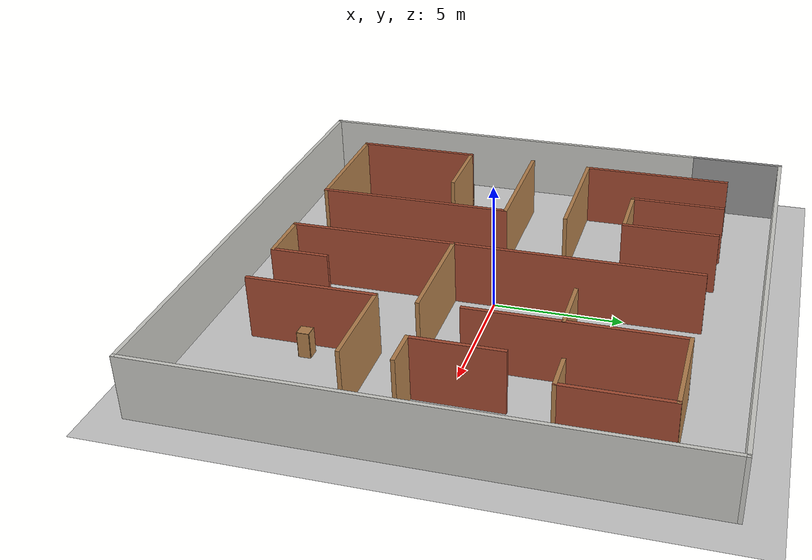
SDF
<sdf version="1.6">
 <world name="default">
  <light name="sun" type="directional">
   <pose>0 0 10 0 -0 0</pose>
   <diffuse>0.8 0.8 0.8 1</diffuse>
   <specular>0.2 0.2 0.2 1</specular>
   <attenuation>
    <range>1000</range>
    <constant>0.9</constant>
    <linear>0.01</linear>
    <quadratic>0.001</quadratic>
   </attenuation>
   <direction>-0.5 0.1 -0.9</direction>
  </light>
  <model name="ground_plane">
   <static>1</static>
   <link name="link">
    <collision name="collision">
     <geometry><plane><normal>0 0 1</normal><size>100 100</size></plane></geometry>
     <surface><friction><ode><mu>100</mu><mu2>50</mu2></ode></friction></surface>
    </collision>
    <visual name="visual">
     <cast_shadows>0</cast_shadows>
     <geometry><plane><normal>0 0 1</normal><size>100 100</size></plane></geometry>
     <material>
      <script><uri>file://media/materials/scripts/gazebo.material</uri><name>Gazebo/Grey</name></script>
     </material>
    </visual>
   </link>
  </model>
  <gravity>0 0 -9.8</gravity>
  <magnetic_field>6e-06 2.3e-05 -4.2e-05</magnetic_field>
  <atmosphere type="adiabatic"/>
  <physics name="default_physics" default="0" type="ode">
   <max_step_size>0.001</max_step_size>
   <real_time_factor>1</real_time_factor>
   <real_time_update_rate>1000</real_time_update_rate>
  </physics>
  <scene><ambient>0.4 0.4 0.4 1</ambient><background>0.7 0.7 0.7 1</background><shadows>1</shadows></scene>
  <audio><device>default</device></audio>
  <spherical_coordinates>
   <surface_model>EARTH_WGS84</surface_model>
   <latitude_deg>0</latitude_deg>
   <longitude_deg>0</longitude_deg>
   <elevation>0</elevation>
   <heading_deg>0</heading_deg>
  </spherical_coordinates>
  <model name="location_test">
   <pose>-0.102355 0.000345 0 0 -0 0</pose>
   <link name="Wall_10">
    <collision name="Wall_10_Collision">
     <geometry><box><size>6 0.15 2.5</size></box></geometry>
     <pose>0 0 1.25 0 -0 0</pose>
    </collision>
    <visual name="Wall_10_Visual">
     <pose>0 0 1.25 0 -0 0</pose>
     <geometry><box><size>6 0.15 2.5</size></box></geometry>
     <material>
      <script><uri>file://media/materials/scripts/gazebo.material</uri><name>Gazebo/Bricks</name></script>
      <ambient>1 1 1 1</ambient>
     </material>
     <meta><layer>0</layer></meta>
    </visual>
    <pose>-7.82094 5.02687 0 0 -0 -1.5708</pose>
   </link>
   <link name="Wall_11">
    <collision name="Wall_11_Collision">
     <geometry><box><size>5 0.15 2.5</size></box></geometry>
     <pose>0 0 1.25 0 -0 0</pose>
    </collision>
    <visual name="Wall_11_Visual">
     <pose>0 0 1.25 0 -0 0</pose>
     <geometry><box><size>5 0.15 2.5</size></box></geometry>
     <material>
      <script><uri>file://media/materials/scripts/gazebo.material</uri><name>Gazebo/Wood</name></script>
      <ambient>1 1 1 1</ambient>
     </material>
     <meta><layer>0</layer></meta>
    </visual>
    <pose>-5.39594 2.10187 0 0 -0 0</pose>
   </link>
   <link name="Wall_13">
    <collision name="Wall_13_Collision">
     <geometry><box><size>5 0.15 2.5</size></box></geometry>
     <pose>0 0 1.25 0 -0 0</pose>
    </collision>
    <visual name="Wall_13_Visual">
     <pose>0 0 1.25 0 -0 0</pose>
     <geometry><box><size>5 0.15 2.5</size></box></geometry>
     <material>
      <script><uri>file://media/materials/scripts/gazebo.material</uri><name>Gazebo/Wood</name></script>
      <ambient>1 1 1 1</ambient>
     </material>
     <meta><layer>0</layer></meta>
    </visual>
    <pose>-5.45712 -0.33808 0 0 -0 0</pose>
   </link>
   <link name="Wall_14">
    <collision name="Wall_14_Collision">
     <geometry><box><size>7.75 0.15 2.5</size></box></geometry>
     <pose>0 0 1.25 0 -0 0</pose>
    </collision>
    <visual name="Wall_14_Visual">
     <pose>0 0 1.25 0 -0 0</pose>
     <geometry><box><size>7.75 0.15 2.5</size></box></geometry>
     <material>
      <script><uri>file://media/materials/scripts/gazebo.material</uri><name>Gazebo/Bricks</name></script>
      <ambient>1 1 1 1</ambient>
     </material>
     <meta><layer>0</layer></meta>
    </visual>
    <pose>-3.03212 -4.13808 0 0 -0 -1.5708</pose>
   </link>
   <link name="Wall_15">
    <collision name="Wall_15_Collision">
     <geometry><box><size>5 0.15 2.5</size></box></geometry>
     <pose>0 0 1.25 0 -0 0</pose>
    </collision>
    <visual name="Wall_15_Visual">
     <pose>0 0 1.25 0 -0 0</pose>
     <geometry><box><size>5 0.15 2.5</size></box></geometry>
     <material>
      <script><uri>file://media/materials/scripts/gazebo.material</uri><name>Gazebo/Wood</name></script>
      <ambient>1 1 1 1</ambient>
     </material>
     <meta><layer>0</layer></meta>
    </visual>
    <pose>-5.45712 -7.93808 0 0 -0 3.14159</pose>
   </link>
   <link name="Wall_16">
    <collision name="Wall_16_Collision">
     <geometry><box><size>5 0.15 2.5</size></box></geometry>
     <pose>0 0 1.25 0 -0 0</pose>
    </collision>
    <visual name="Wall_16_Visual">
     <pose>0 0 1.25 0 -0 0</pose>
     <geometry><box><size>5 0.15 2.5</size></box></geometry>
     <material>
      <script><uri>file://media/materials/scripts/gazebo.material</uri><name>Gazebo/Bricks</name></script>
      <ambient>1 1 1 1</ambient>
     </material>
     <meta><layer>0</layer></meta>
    </visual>
    <pose>-7.88212 -5.51308 0 0 -0 1.5708</pose>
   </link>
   <link name="Wall_17">
    <collision name="Wall_17_Collision">
     <geometry><box><size>3 0.15 2.5</size></box></geometry>
     <pose>0 0 1.25 0 -0 0</pose>
    </collision>
    <visual name="Wall_17_Visual">
     <pose>0 0 1.25 0 -0 0</pose>
     <geometry><box><size>3 0.15 2.5</size></box></geometry>
     <material>
      <script><uri>file://media/materials/scripts/gazebo.material</uri><name>Gazebo/Wood</name></script>
      <ambient>1 1 1 1</ambient>
     </material>
     <meta><layer>0</layer></meta>
    </visual>
    <pose>-6.45712 -3.08808 0 0 -0 0</pose>
   </link>
   <link name="Wall_19">
    <collision name="Wall_19_Collision">
     <geometry><box><size>16 0.15 2.5</size></box></geometry>
     <pose>0 0 1.25 0 -0 0</pose>
    </collision>
    <visual name="Wall_19_Visual">
     <pose>0 0 1.25 0 -0 0</pose>
     <geometry><box><size>16 0.15 2.5</size></box></geometry>
     <material>
      <script><uri>file://media/materials/scripts/gazebo.material</uri><name>Gazebo/Bricks</name></script>
      <ambient>1 1 1 1</ambient>
     </material>
     <meta><layer>0</layer></meta>
    </visual>
    <pose>0.101926 -0.064899 0 0 -0 -1.5708</pose>
   </link>
   <link name="Wall_20">
    <collision name="Wall_20_Collision">
     <geometry><box><size>2.25 0.15 2.5</size></box></geometry>
     <pose>0 0 1.25 0 -0 0</pose>
    </collision>
    <visual name="Wall_20_Visual">
     <pose>0 0 1.25 0 -0 0</pose>
     <geometry><box><size>2.25 0.15 2.5</size></box></geometry>
     <material>
      <script><uri>file://media/materials/scripts/gazebo.material</uri><name>Gazebo/Wood</name></script>
      <ambient>1 1 1 1</ambient>
     </material>
     <meta><layer>0</layer></meta>
    </visual>
    <pose>1.15193 -7.9899 0 0 -0 0</pose>
   </link>
   <link name="Wall_21">
    <collision name="Wall_21_Collision">
     <geometry><box><size>2.25 0.15 2.5</size></box></geometry>
     <pose>0 0 1.25 0 -0 0</pose>
    </collision>
    <visual name="Wall_21_Visual">
     <pose>0 0 1.25 0 -0 0</pose>
     <geometry><box><size>2.25 0.15 2.5</size></box></geometry>
     <material>
      <script><uri>file://media/materials/scripts/gazebo.material</uri><name>Gazebo/Bricks</name></script>
      <ambient>1 1 1 1</ambient>
     </material>
     <meta><layer>0</layer></meta>
    </visual>
    <pose>2.20193 -6.9399 0 0 -0 1.5708</pose>
   </link>
   <link name="Wall_26">
    <collision name="Wall_26_Collision">
     <geometry><box><size>5 0.15 2.5</size></box></geometry>
     <pose>0 0 1.25 0 -0 0</pose>
    </collision>
    <visual name="Wall_26_Visual">
     <pose>0 0 1.25 0 -0 0</pose>
     <geometry><box><size>5 0.15 2.5</size></box></geometry>
     <material>
      <script><uri>file://media/materials/scripts/gazebo.material</uri><name>Gazebo/Bricks</name></script>
      <ambient>1 1 1 1</ambient>
     </material>
     <meta><layer>0</layer></meta>
    </visual>
    <pose>4.36504 -5.59745 0 0 -0 1.5708</pose>
   </link>
   <link name="Wall_27">
    <collision name="Wall_27_Collision">
     <geometry><box><size>3.75 0.15 2.5</size></box></geometry>
     <pose>0 0 1.25 0 -0 0</pose>
    </collision>
    <visual name="Wall_27_Visual">
     <pose>0 0 1.25 0 -0 0</pose>
     <geometry><box><size>3.75 0.15 2.5</size></box></geometry>
     <material>
      <script><uri>file://media/materials/scripts/gazebo.material</uri><name>Gazebo/Wood</name></script>
      <ambient>1 1 1 1</ambient>
     </material>
     <meta><layer>0</layer></meta>
    </visual>
    <pose>6.16504 -3.17245 0 0 -0 0</pose>
   </link>
   <link name="Wall_29">
    <collision name="Wall_29_Collision">
     <geometry><box><size>8 0.15 2.5</size></box></geometry>
     <pose>0 0 1.25 0 -0 0</pose>
    </collision>
    <visual name="Wall_29_Visual">
     <pose>0 0 1.25 0 -0 0</pose>
     <geometry><box><size>8 0.15 2.5</size></box></geometry>
     <material>
      <script><uri>file://media/materials/scripts/gazebo.material</uri><name>Gazebo/Bricks</name></script>
      <ambient>1 1 1 1</ambient>
     </material>
     <meta><layer>0</layer></meta>
    </visual>
    <pose>4.41757 3.9192 0 0 -0 1.5708</pose>
   </link>
   <link name="Wall_30">
    <collision name="Wall_30_Collision">
     <geometry><box><size>3.75 0.15 2.5</size></box></geometry>
     <pose>0 0 1.25 0 -0 0</pose>
    </collision>
    <visual name="Wall_30_Visual">
     <pose>0 0 1.25 0 -0 0</pose>
     <geometry><box><size>3.75 0.15 2.5</size></box></geometry>
     <material>
      <script><uri>file://media/materials/scripts/gazebo.material</uri><name>Gazebo/Wood</name></script>
      <ambient>1 1 1 1</ambient>
     </material>
     <meta><layer>0</layer></meta>
    </visual>
    <pose>6.21757 7.8442 0 0 -0 0</pose>
   </link>
   <link name="Wall_31">
    <collision name="Wall_31_Collision">
     <geometry><box><size>4 0.15 2.5</size></box></geometry>
     <pose>0 0 1.25 0 -0 0</pose>
    </collision>
    <visual name="Wall_31_Visual">
     <pose>0 0 1.25 0 -0 0</pose>
     <geometry><box><size>4 0.15 2.5</size></box></geometry>
     <material>
      <script><uri>file://media/materials/scripts/gazebo.material</uri><name>Gazebo/Bricks</name></script>
      <ambient>1 1 1 1</ambient>
     </material>
     <meta><layer>0</layer></meta>
    </visual>
    <pose>8.01757 5.9192 0 0 -0 -1.5708</pose>
   </link>
   <link name="Wall_32">
    <collision name="Wall_32_Collision">
     <geometry><box><size>1.5 0.15 2.5</size></box></geometry>
     <pose>0 0 1.25 0 -0 0</pose>
    </collision>
    <visual name="Wall_32_Visual">
     <pose>0 0 1.25 0 -0 0</pose>
     <geometry><box><size>1.5 0.15 2.5</size></box></geometry>
     <material>
      <script><uri>file://media/materials/scripts/gazebo.material</uri><name>Gazebo/Wood</name></script>
      <ambient>1 1 1 1</ambient>
     </material>
     <meta><layer>0</layer></meta>
    </visual>
    <pose>7.34257 3.9942 0 0 -0 3.14159</pose>
   </link>
   <link name="Wall_34">
    <collision name="Wall_34_Collision">
     <geometry><box><size>3.5 0.15 2.5</size></box></geometry>
     <pose>0 0 1.25 0 -0 0</pose>
    </collision>
    <visual name="Wall_34_Visual">
     <pose>0 0 1.25 0 -0 0</pose>
     <geometry><box><size>3.5 0.15 2.5</size></box></geometry>
     <material>
      <script><uri>file://media/materials/scripts/gazebo.material</uri><name>Gazebo/Bricks</name></script>
      <ambient>1 1 1 1</ambient>
     </material>
     <meta><layer>0</layer></meta>
    </visual>
    <pose>6.63383 0.394745 0 0 -0 -1.5708</pose>
   </link>
   <link name="Wall_35">
    <collision name="Wall_35_Collision">
     <geometry><box><size>1.5 0.15 2.5</size></box></geometry>
     <pose>0 0 1.25 0 -0 0</pose>
    </collision>
    <visual name="Wall_35_Visual">
     <pose>0 0 1.25 0 -0 0</pose>
     <geometry><box><size>1.5 0.15 2.5</size></box></geometry>
     <material>
      <script><uri>file://media/materials/scripts/gazebo.material</uri><name>Gazebo/Wood</name></script>
      <ambient>1 1 1 1</ambient>
     </material>
     <meta><layer>0</layer></meta>
    </visual>
    <pose>7.30883 -1.28025 0 0 -0 0</pose>
   </link>
   <link name="Wall_37">
    <collision name="Wall_37_Collision">
     <geometry><box><size>3.75 0.15 2.5</size></box></geometry>
     <pose>0 0 1.25 0 -0 0</pose>
    </collision>
    <visual name="Wall_37_Visual">
     <pose>0 0 1.25 0 -0 0</pose>
     <geometry><box><size>3.75 0.15 2.5</size></box></geometry>
     <material>
      <script><uri>file://media/materials/scripts/gazebo.material</uri><name>Gazebo/Bricks</name></script>
      <ambient>1 1 1 1</ambient>
     </material>
     <meta><layer>0</layer></meta>
    </visual>
    <pose>-5.36213 6.21496 0 0 -0 -1.5708</pose>
   </link>
   <link name="Wall_38">
    <collision name="Wall_38_Collision">
     <geometry><box><size>2.5 0.15 2.5</size></box></geometry>
     <pose>0 0 1.25 0 -0 0</pose>
    </collision>
    <visual name="Wall_38_Visual">
     <pose>0 0 1.25 0 -0 0</pose>
     <geometry><box><size>2.5 0.15 2.5</size></box></geometry>
     <material>
      <script><uri>file://media/materials/scripts/gazebo.material</uri><name>Gazebo/Wood</name></script>
      <ambient>1 1 1 1</ambient>
     </material>
     <meta><layer>0</layer></meta>
    </visual>
    <pose>-4.18713 4.41496 0 0 -0 0</pose>
   </link>
   <link name="Wall_39">
    <collision name="Wall_39_Collision">
     <geometry><box><size>3.75 0.15 2.5</size></box></geometry>
     <pose>0 0 1.25 0 -0 0</pose>
    </collision>
    <visual name="Wall_39_Visual">
     <pose>0 0 1.25 0 -0 0</pose>
     <geometry><box><size>3.75 0.15 2.5</size></box></geometry>
     <material>
      <script><uri>file://media/materials/scripts/gazebo.material</uri><name>Gazebo/Bricks</name></script>
      <ambient>1 1 1 1</ambient>
     </material>
     <meta><layer>0</layer></meta>
    </visual>
    <pose>-3.01213 6.21496 0 0 -0 1.5708</pose>
   </link>
   <link name="Wall_4">
    <collision name="Wall_4_Collision">
     <geometry><box><size>16.5 0.15 2.5</size></box></geometry>
     <pose>0 0 1.25 0 -0 0</pose>
    </collision>
    <visual name="Wall_4_Visual">
     <pose>0 0 1.25 0 -0 0</pose>
     <geometry><box><size>16.5 0.15 2.5</size></box></geometry>
     <material>
      <script><uri>file://media/materials/scripts/gazebo.material</uri><name>Gazebo/CeilingTiled</name></script>
      <ambient>1 1 1 1</ambient>
     </material>
     <meta><layer>0</layer></meta>
    </visual>
    <pose>-10.05 -1.875 0 0 -0 -1.5708</pose>
   </link>
   <link name="Wall_41">
    <collision name="Wall_41_Collision">
     <geometry><box><size>2.25 0.15 2.5</size></box></geometry>
     <pose>0 0 1.25 0 -0 0</pose>
    </collision>
    <visual name="Wall_41_Visual">
     <pose>0 0 1.25 0 -0 0</pose>
     <geometry><box><size>2.25 0.15 2.5</size></box></geometry>
     <material>
      <script><uri>file://media/materials/scripts/gazebo.material</uri><name>Gazebo/Wood</name></script>
      <ambient>1 1 1 1</ambient>
     </material>
     <meta><layer>0</layer></meta>
    </visual>
    <pose>3.33239 3.54725 0 0 -0 3.14159</pose>
   </link>
   <link name="Wall_43">
    <collision name="Wall_43_Collision">
     <geometry><box><size>4.5 0.15 2.5</size></box></geometry>
     <pose>0 0 1.25 0 -0 0</pose>
    </collision>
    <visual name="Wall_43_Visual">
     <pose>0 0 1.25 0 -0 0</pose>
     <geometry><box><size>4.5 0.15 2.5</size></box></geometry>
     <material>
      <script><uri>file://media/materials/scripts/gazebo.material</uri><name>Gazebo/Wood</name></script>
      <ambient>1 1 1 1</ambient>
     </material>
     <meta><layer>0</layer></meta>
    </visual>
    <pose>2.30076 -1.58885 0 0 -0 0</pose>
   </link>
   <link name="Wall_5">
    <collision name="Wall_5_Collision">
     <geometry><box><size>20.25 0.15 2.5</size></box></geometry>
     <pose>0 0 1.25 0 -0 0</pose>
    </collision>
    <visual name="Wall_5_Visual">
     <pose>0 0 1.25 0 -0 0</pose>
     <geometry><box><size>20.25 0.15 2.5</size></box></geometry>
     <material>
      <script><uri>file://media/materials/scripts/gazebo.material</uri><name>Gazebo/CeilingTiled</name></script>
      <ambient>1 1 1 1</ambient>
     </material>
     <meta><layer>0</layer></meta>
    </visual>
    <pose>-0 -10.05 0 0 -0 0</pose>
   </link>
   <link name="Wall_6">
    <collision name="Wall_6_Collision">
     <geometry><box><size>20.25 0.15 2.5</size></box></geometry>
     <pose>0 0 1.25 0 -0 0</pose>
    </collision>
    <visual name="Wall_6_Visual">
     <pose>0 0 1.25 0 -0 0</pose>
     <geometry><box><size>20.25 0.15 2.5</size></box></geometry>
     <material>
      <script><uri>file://media/materials/scripts/gazebo.material</uri><name>Gazebo/CeilingTiled</name></script>
      <ambient>1 1 1 1</ambient>
     </material>
     <meta><layer>0</layer></meta>
    </visual>
    <pose>10.05 -0 0 0 -0 1.5708</pose>
   </link>
   <link name="Wall_7">
    <collision name="Wall_7_Collision">
     <geometry><box><size>20.25 0.15 2.5</size></box></geometry>
     <pose>0 0 1.25 0 -0 0</pose>
    </collision>
    <visual name="Wall_7_Visual">
     <pose>0 0 1.25 0 -0 0</pose>
     <geometry><box><size>20.25 0.15 2.5</size></box></geometry>
     <material>
      <script><uri>file://media/materials/scripts/gazebo.material</uri><name>Gazebo/CeilingTiled</name></script>
      <ambient>1 1 1 1</ambient>
     </material>
     <meta><layer>0</layer></meta>
    </visual>
    <pose>-0 10.05 0 0 -0 3.14159</pose>
   </link>
   <link name="Wall_8">
    <collision name="Wall_8_Collision">
     <geometry><box><size>3.75 0.15 2.5</size></box></geometry>
     <pose>0 0 1.25 0 -0 0</pose>
    </collision>
    <visual name="Wall_8_Visual">
     <pose>0 0 1.25 0 -0 0</pose>
     <geometry><box><size>3.75 0.15 2.5</size></box></geometry>
     <material>
      <script><uri>file://media/materials/scripts/gazebo.material</uri><name>Gazebo/Grey</name></script>
      <ambient>1 1 1 1</ambient>
     </material>
     <meta><layer>0</layer></meta>
    </visual>
    <pose>-10.05 8.25 0 0 -0 -1.5708</pose>
   </link>
   <static>1</static>
  </model>
  <model name="cabinet">
   <static>1</static>
   <link name="cabinet_bottom_plate">
    <inertial>
     <pose>0 0 -1 0 -0 0</pose>
     <inertia><ixx>2.05</ixx><ixy>0</ixy><ixz>0</ixz><iyy>2.05</iyy><iyz>0</iyz><izz>2.05</izz></inertia>
     <mass>25</mass>
    </inertial>
    <collision name="cabinet_bottom_plate_geom">
     <pose>0 0 0.01 0 -0 0</pose>
     <geometry><box><size>0.45 0.45 0.02</size></box></geometry>
    </collision>
    <visual name="cabinet_bottom_plate_geom_visual">
     <pose>0 0 0.01 0 -0 0</pose>
     <geometry><box><size>0.45 0.45 0.02</size></box></geometry>
     <material>
      <script><uri>file://media/materials/scripts/gazebo.material</uri><name>Gazebo/Wood</name></script>
     </material>
    </visual>
    <collision name="cabinet_bottom_plate_geom_cabinet_back_plate">
     <pose>0.235 0 0.51 0 -0 0</pose>
     <geometry><box><size>0.02 0.45 1.02</size></box></geometry>
    </collision>
    <visual name="cabinet_bottom_plate_geom_cabinet_back_plate_visual">
     <pose>0.235 0 0.51 0 -0 0</pose>
     <geometry><box><size>0.02 0.45 1.02</size></box></geometry>
     <material>
      <script><uri>file://media/materials/scripts/gazebo.material</uri><name>Gazebo/Wood</name></script>
     </material>
    </visual>
    <collision name="cabinet_bottom_plate_geom_cabinet_left_plate">
     <pose>0 0.235 0.51 0 -0 0</pose>
     <geometry><box><size>0.45 0.02 1.02</size></box></geometry>
    </collision>
    <visual name="cabinet_bottom_plate_geom_cabinet_left_plate_visual">
     <pose>0 0.235 0.51 0 -0 0</pose>
     <geometry><box><size>0.45 0.02 1.02</size></box></geometry>
     <material>
      <script><uri>file://media/materials/scripts/gazebo.material</uri><name>Gazebo/Wood</name></script>
     </material>
    </visual>
    <collision name="cabinet_bottom_plate_geom_cabinet_middle_plate">
     <pose>0 0 0.51 0 -0 0</pose>
     <geometry><box><size>0.45 0.45 0.02</size></box></geometry>
    </collision>
    <visual name="cabinet_bottom_plate_geom_cabinet_middle_plate_visual">
     <pose>0 0 0.51 0 -0 0</pose>
     <geometry><box><size>0.45 0.45 0.02</size></box></geometry>
     <material>
      <script><uri>file://media/materials/scripts/gazebo.material</uri><name>Gazebo/Wood</name></script>
     </material>
    </visual>
    <collision name="cabinet_bottom_plate_geom_cabinet_right_plate">
     <pose>0 -0.235 0.51 0 -0 0</pose>
     <geometry><box><size>0.45 0.02 1.02</size></box></geometry>
    </collision>
    <visual name="cabinet_bottom_plate_geom_cabinet_right_plate_visual">
     <pose>0 -0.235 0.51 0 -0 0</pose>
     <geometry><box><size>0.45 0.02 1.02</size></box></geometry>
     <material>
      <script><uri>file://media/materials/scripts/gazebo.material</uri><name>Gazebo/Wood</name></script>
     </material>
    </visual>
    <collision name="cabinet_bottom_plate_geom_cabinet_top_plate">
     <pose>0 0 1.01 0 -0 0</pose>
     <geometry><box><size>0.45 0.45 0.02</size></box></geometry>
    </collision>
    <visual name="cabinet_bottom_plate_geom_cabinet_top_plate_visual">
     <pose>0 0 1.01 0 -0 0</pose>
     <geometry><box><size>0.45 0.45 0.02</size></box></geometry>
     <material>
      <script><uri>file://media/materials/scripts/gazebo.material</uri><name>Gazebo/Wood</name></script>
     </material>
    </visual>
   </link>
   <pose>4.92153 -5.66384 0 0 -0 0</pose>
  </model>
  <model name="bookshelf">
   <static>1</static>
   <link name="link">
    <inertial><mass>1</mass></inertial>
    <collision name="back">
     <pose>0 0.005 0.6 0 -0 0</pose>
     <geometry><box><size>0.9 0.01 1.2</size></box></geometry>
    </collision>
    <visual name="visual1">
     <pose>0 0.005 0.6 0 -0 0</pose>
     <geometry><box><size>0.9 0.01 1.2</size></box></geometry>
     <material>
      <script><uri>file://media/materials/scripts/gazebo.material</uri><name>Gazebo/Wood</name></script>
     </material>
    </visual>
    <collision name="left_side">
     <pose>0.45 -0.195 0.6 0 -0 0</pose>
     <geometry><box><size>0.02 0.4 1.2</size></box></geometry>
    </collision>
    <visual name="visual2">
     <pose>0.45 -0.195 0.6 0 -0 0</pose>
     <geometry><box><size>0.02 0.4 1.2</size></box></geometry>
     <material>
      <script><uri>file://media/materials/scripts/gazebo.material</uri><name>Gazebo/Wood</name></script>
     </material>
    </visual>
    <collision name="right_side">
     <pose>-0.45 -0.195 0.6 0 -0 0</pose>
     <geometry><box><size>0.02 0.4 1.2</size></box></geometry>
    </collision>
    <visual name="visual3">
     <pose>-0.45 -0.195 0.6 0 -0 0</pose>
     <geometry><box><size>0.02 0.4 1.2</size></box></geometry>
     <material>
      <script><uri>file://media/materials/scripts/gazebo.material</uri><name>Gazebo/Wood</name></script>
     </material>
    </visual>
    <collision name="bottom">
     <pose>0 -0.195 0.03 0 -0 0</pose>
     <geometry><box><size>0.88 0.4 0.06</size></box></geometry>
    </collision>
    <visual name="visual4">
     <pose>0 -0.195 0.03 0 -0 0</pose>
     <geometry><box><size>0.88 0.4 0.06</size></box></geometry>
     <material>
      <script><uri>file://media/materials/scripts/gazebo.material</uri><name>Gazebo/Wood</name></script>
     </material>
    </visual>
    <collision name="top">
     <pose>0 -0.195 1.19 0 -0 0</pose>
     <geometry><box><size>0.88 0.4 0.02</size></box></geometry>
    </collision>
    <visual name="visual5">
     <pose>0 -0.195 1.19 0 -0 0</pose>
     <geometry><box><size>0.88 0.4 0.02</size></box></geometry>
     <material>
      <script><uri>file://media/materials/scripts/gazebo.material</uri><name>Gazebo/Wood</name></script>
     </material>
    </visual>
    <collision name="low_shelf">
     <pose>0 -0.195 0.43 0 -0 0</pose>
     <geometry><box><size>0.88 0.4 0.02</size></box></geometry>
    </collision>
    <visual name="visual6">
     <pose>0 -0.195 0.43 0 -0 0</pose>
     <geometry><box><size>0.88 0.4 0.02</size></box></geometry>
     <material>
      <script><uri>file://media/materials/scripts/gazebo.material</uri><name>Gazebo/Wood</name></script>
     </material>
    </visual>
    <collision name="high_shelf">
     <pose>0 -0.195 0.8 0 -0 0</pose>
     <geometry><box><size>0.88 0.4 0.02</size></box></geometry>
    </collision>
    <visual name="visual7">
     <pose>0 -0.195 0.8 0 -0 0</pose>
     <geometry><box><size>0.88 0.4 0.02</size></box></geometry>
     <material>
      <script><uri>file://media/materials/scripts/gazebo.material</uri><name>Gazebo/Wood</name></script>
     </material>
    </visual>
   </link>
   <pose>2.16288 -1.68814 0 0 -0 0</pose>
  </model>
 </world>
</sdf>
